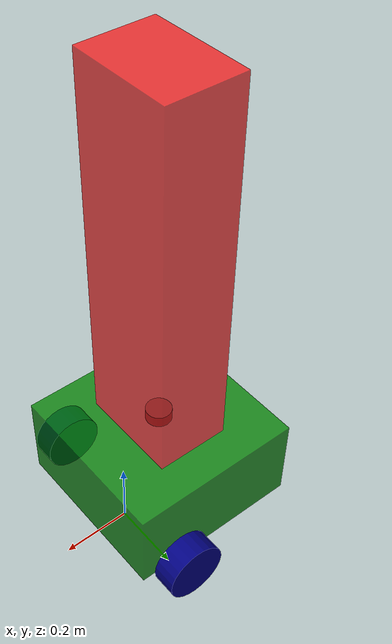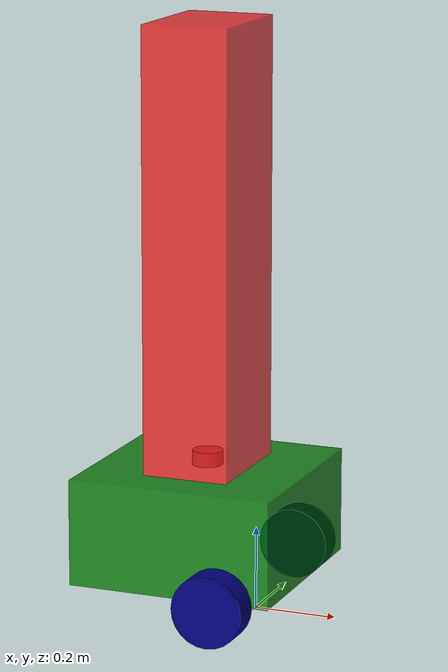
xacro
<?xml version="1.0"?>
<robot name="my_robot" xmlns:xacro="http://www.ros.org/wiki/xacro">
  <xacro:arg name="is_ignition" default="false"/>
  <xacro:arg name="is_sim" default="false"/>

  <xacro:include filename="common_properties.xacro" />
  <xacro:include filename="mobile_base.xacro" />
  <xacro:include filename="mobile_base_gazebo.xacro" />
  <xacro:include filename="ros2_control.xacro" />
  <xacro:include filename="lidar.xacro"/>
</robot>

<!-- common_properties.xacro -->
<robot xmlns:xacro="http://www.ros.org/wiki/xacro">
 <!-- Define color -->
  <material name="green">
    <color rgba="0 0.5 0 0.8" />
  </material>
  <material name="blue">
    <color rgba="0 0 0.5 1" />
  </material>
  <material name="grey">
    <color rgba="0.5 0.5 0.5 1" />
  </material>
  <material name="red">
    <color rgba="1 0 0 0.7" />
  </material>
  <material name="dark">
    <color rgba="0.5 0.5 0.5 1" />
  </material>
  <!--Define inetial-->
  <xacro:macro name="box_inertia" params="m l w h xyz rpy">
    <inertial>
      <origin xyz="${xyz}" rpy="${rpy}" />
      <mass value="${m}" />
      <inertia ixx="${(m/12)*(h*h + l*l)}" ixy="0" ixz="0"
               iyy="${(m/12)*(w*w + l*l)}" iyz="0"
               izz="${(m/12)*(h*h + w*w)}" />
    </inertial>
  </xacro:macro>

  <xacro:macro name="cylinder_inertia" params="m h r xyz rpy">
    <inertial>
      <origin xyz="${xyz}" rpy="${rpy}" />
      <mass value="${m}" />
      <inertia ixx="${(m/12)*(3*r*r + h*h)}" ixy="0" ixz="0"
               iyy="${(m/12)*(3*r*r + h*h)}" iyz="0"
               izz="${(m/2)*r*r}" />
    </inertial>
  </xacro:macro>

  <xacro:macro name="sphere_inertia" params="m r xyz rpy">
    <inertial>
      <origin xyz="${xyz}" rpy="${rpy}" />
      <mass value="${m}" />
      <inertia ixx="${(2/5)*m*r*r}" ixy="0" ixz="0"
               iyy="${(2/5)*m*r*r}" iyz="0"
               izz="${(2/5)*m*r*r}" />
    </inertial>
  </xacro:macro>

</robot>

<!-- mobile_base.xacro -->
<robot xmlns:xacro="http://www.ros.org/wiki/xacro">

    <!--Dinamic
    var using xacro-->
    <xacro:property name="base_length" value="0.5" />
    <xacro:property name="base_width" value="0.5" />
    <xacro:property name="base_height" value="0.257" />
    <xacro:property name="wheel_radius" value="0.0865" />
    <xacro:property name="wheel_length" value="0.07" />
    <xacro:property name="upper_base_length" value="0.21" />
    <xacro:property name="upper_base_width" value="0.29" />
    <xacro:property name="upper_base_height" value="1.064"/>

    <!-- Define links -->
    <link name="base_footprint" />

    <link name="base_link">
        <visual>
            <geometry>
                <box size="${base_length} ${base_width} ${base_height}" />
            </geometry>
            <origin xyz="${-base_length / 4.0} 0 ${base_height/2.0}" rpy="0 0 0" />
            <material name="green" />
        </visual>

        <collision>
            <geometry>
                <box size="${base_length} ${base_width} ${base_height}" />
            </geometry>
            <origin xyz="0 0 ${base_height/2.0}" rpy="0 0 0" />
            <material name="green" />
        </collision>

        <xacro:box_inertia m="5.0" l="${base_length}" w="${base_width}" h="${base_height}"
            xyz="0 0 ${base_height/2.0}" rpy="0 0 0" />
    </link>

    <link name="upper_base_link">
        <visual>
            <geometry>
                <box size="${upper_base_length} ${upper_base_width} ${upper_base_height}" />
            </geometry>
            <origin xyz="0 0 0" rpy="0 0 0" />
            <material name="red" />
        </visual>

        <collision>
            <geometry>
                <box size="${upper_base_length} ${upper_base_width} ${upper_base_height}" />
            </geometry>
            <origin xyz="0 0 0" rpy="0 0 0" />
        </collision>

        <xacro:box_inertia m="5.0" l="${upper_base_length}" w="${upper_base_width}" h="${upper_base_height}"
            xyz="0 0 ${base_height + upper_base_height / 2.0}" rpy="0 0 0" />
    </link>
    <!--Function
    with xacro-->
    <xacro:macro name="wheel_link" params="prefix">
        <link name="${prefix}_wheel_link">
            <visual>
                <geometry>
                    <cylinder radius="${wheel_radius}" length="${wheel_length}" />
                </geometry>
                <origin xyz="0 0 0" rpy="${pi/2.0} 0 0" />
                <material name="blue" />
            </visual>

            <collision>
                <geometry>
                    <cylinder radius="${wheel_radius}" length="${wheel_length}" />
                </geometry>
                <origin xyz="0 0 0" rpy="${pi/2.0} 0 0" />
            </collision>
            <xacro:cylinder_inertia m="1.0" h="${wheel_length}" r="${wheel_radius}"
                xyz="0 0 0" rpy="${pi/2.0} 0 0" />
        </link>
    </xacro:macro>

    <!-- Use the macro to create wheel links -->
    <xacro:wheel_link prefix="right" />
    <xacro:wheel_link prefix="left" />

    <link name="caster_wheel_link">
        <visual>
            <geometry>
                <sphere radius="${wheel_radius / 2.0}" />
            </geometry>
            <origin xyz="0 0 0" rpy="0 0 0" />
            <material name="red" />
        </visual>
        <collision>
            <geometry>
                <sphere radius="${wheel_radius / 2.0}" />
            </geometry>
            <origin xyz="0 0 0" rpy="0 0 0" />
        </collision>
        <xacro:shpere_inertia m="5.0" r="${wheel_radius / 2.0}"
            xyz="0 0 0" rpy="0 0 0" />
    </link>

    <!-- Define joints -->
    <joint name="base_joint" type="fixed">
        <parent link="base_footprint" />
        <child link="base_link" />
        <origin xyz="0 0 ${wheel_radius}" rpy="0 0 0" />
    </joint>

    <joint name="base_right_wheel_joint" type="continuous">
        <parent link="base_link" />
        <child link="right_wheel_link" />
        <origin xyz="0 ${-(base_width + wheel_length) / 2.0} 0" rpy="0 0 0" />
        <axis xyz="0 1 0" />
    </joint>

    <joint name="base_left_wheel_joint" type="continuous">
        <parent link="base_link" />
        <child link="left_wheel_link" />
        <origin xyz="0 ${(base_width + wheel_length) / 2.0} 0" rpy="0 0 0" />
        <axis xyz="0 1 0" />
    </joint>

    <joint name="base_caster_wheel_joint" type="fixed">
        <parent link="base_link" />
        <child link="caster_wheel_link" />
        <origin xyz="${-base_length / 4.0 - base_length / 3.0} 0 ${-wheel_radius / 2.0}" rpy="0 0 0" />
        <axis xyz="0 1 0" />
    </joint>

    <joint name="upper_base_joint" type="fixed">
        <parent link="base_link" />
        <child link="upper_base_link" />
        <origin xyz="${-base_length / 4.0} 0 ${base_height + upper_base_height / 2.0}" rpy="0 0 0" />
    </joint>

</robot>

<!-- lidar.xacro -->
<robot xmlns:xacro="http://www.ros.org/wiki/xacro">
    <xacro:property name="lidar_height" value="0.037" />
    <xacro:property name="lidar_radius" value="0.0345" />

    <!-- Include lidar -->
    <link name="laser">
        <visual>
            <geometry>
                <cylinder radius="${lidar_height}" length="${lidar_radius}" />
            </geometry>
            <origin xyz="0 0 ${lidar_height/2 - 0.026}" rpy="0 0 0" />
            <material name="grey" />
        </visual>
        <collision>
            <geometry>
                <cylinder radius="${lidar_height}" length="${lidar_radius}" />
            </geometry>
            <origin xyz="0 0 ${lidar_height/4}" rpy="0 0 0" />
            <material name="grey" />
        </collision>
    </link>

    <joint name="laser_joint" type="fixed">
        <parent link="base_link" />
        <child link="laser" />
        <origin xyz="${-base_length / 4.0} 0 ${base_height + 0.026}" rpy="0 0 0" />
    </joint>

    <gazebo reference="laser_link">
        <sensor name="laser" type="ray">
            <pose> 0 0 0 0 0 0 </pose>
            <visualize>true</visualize>
            <update_rate>10.0</update_rate>
            <ray>
                <scan>
                    <horizontal>
                        <sample>720</sample>
                        <resolution>1</resolution>
                        <min_angle>-3.14</min_angle>
                        <max_angle>3.14</max_angle>
                    </horizontal>
                </scan>
                <range>
                    <min>0.5</min>
                    <max>18.0</max>
                    <resolution>1</resolution>
                </range>
            </ray>
            <plugin name="laser_controller" filename="libgazebo_ros_ray_sensor.so">
                <ros>
                    <argument>~/out:=scan</argument>
                </ros>
                <output_type>sensor_msgs/LaserScan</output_type>
                <frame_name>laser</frame_name>
            </plugin>
        </sensor>
    </gazebo>

</robot>
